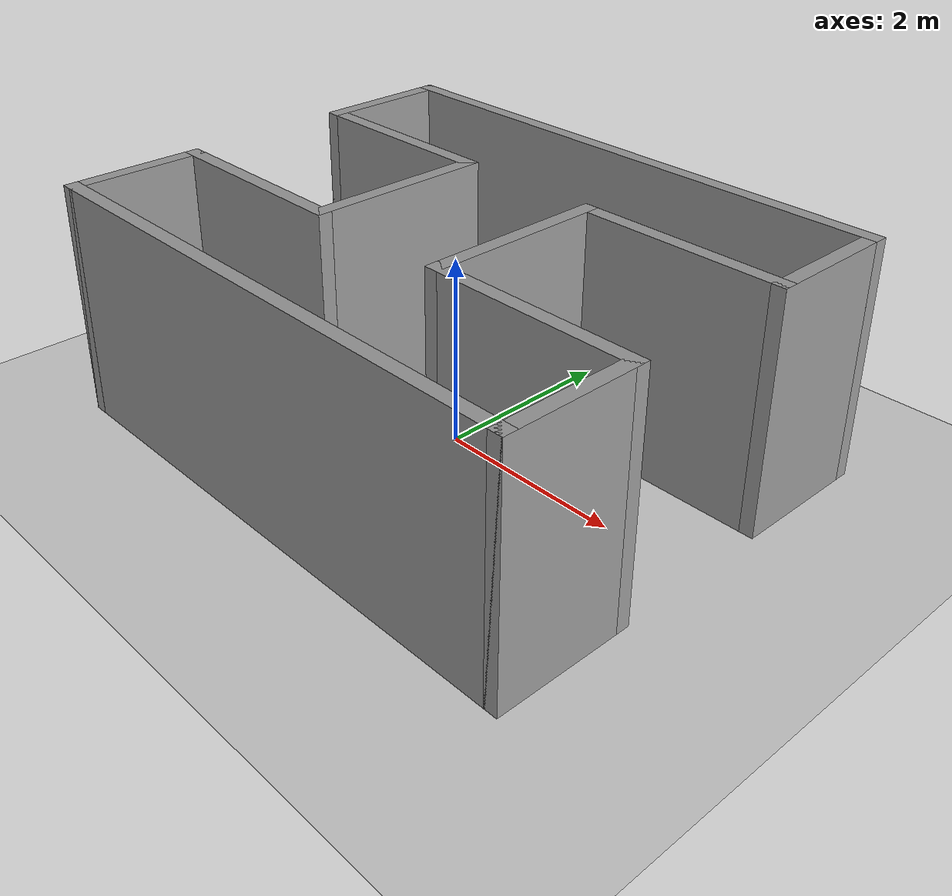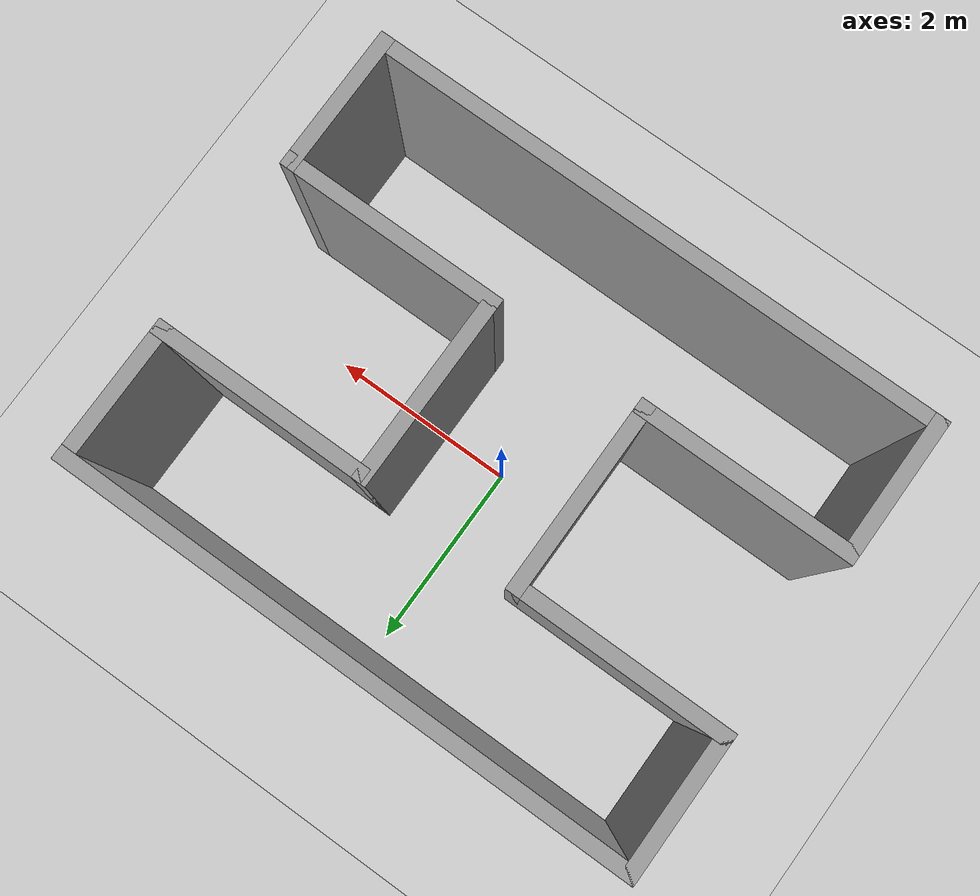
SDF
<sdf version="1.6">
 <world name="default">
  <light name="sun" type="directional">
   <pose>0 0 10 0 -0 0</pose>
   <diffuse>0.8 0.8 0.8 1</diffuse>
   <specular>0.2 0.2 0.2 1</specular>
   <attenuation>
    <range>1000</range>
    <constant>0.9</constant>
    <linear>0.01</linear>
    <quadratic>0.001</quadratic>
   </attenuation>
   <direction>-0.5 0.1 -0.9</direction>
  </light>
  <model name="ground_plane">
   <static>1</static>
   <link name="link">
    <collision name="collision">
     <geometry><plane><normal>0 0 1</normal><size>100 100</size></plane></geometry>
     <surface>
      <contact><collide_bitmask>65535</collide_bitmask></contact>
      <friction><ode><mu>100</mu><mu2>50</mu2></ode></friction>
     </surface>
    </collision>
    <visual name="visual">
     <cast_shadows>0</cast_shadows>
     <geometry><plane><normal>0 0 1</normal><size>100 100</size></plane></geometry>
     <material>
      <script><uri>file://media/materials/scripts/gazebo.material</uri><name>Gazebo/Grey</name></script>
     </material>
    </visual>
   </link>
  </model>
  <gravity>0 0 -9.8</gravity>
  <magnetic_field>6e-06 2.3e-05 -4.2e-05</magnetic_field>
  <atmosphere type="adiabatic"/>
  <physics name="default_physics" default="0" type="ode">
   <max_step_size>0.001</max_step_size>
   <real_time_factor>1</real_time_factor>
   <real_time_update_rate>1000</real_time_update_rate>
  </physics>
  <scene><ambient>0.4 0.4 0.4 1</ambient><background>0.7 0.7 0.7 1</background><shadows>1</shadows></scene>
  <spherical_coordinates>
   <surface_model>EARTH_WGS84</surface_model>
   <latitude_deg>0</latitude_deg>
   <longitude_deg>0</longitude_deg>
   <elevation>0</elevation>
   <heading_deg>0</heading_deg>
  </spherical_coordinates>
  <model name="train_ma_06_0">
   <link name="Wall_27">
    <collision name="Wall_27_Collision">
     <geometry><box><size>6 0.15 2.5</size></box></geometry>
     <pose>0 0 1.25 0 -0 0</pose>
    </collision>
    <visual name="Wall_27_Visual">
     <pose>0 0 1.25 0 -0 0</pose>
     <geometry><box><size>6 0.15 2.5</size></box></geometry>
     <material>
      <script><uri>file://media/materials/scripts/gazebo.material</uri><name>Gazebo/Grey</name></script>
      <ambient>1 1 1 1</ambient>
     </material>
     <meta><layer>0</layer></meta>
    </visual>
    <pose>0 2.275 0 0 -0 3.14159</pose>
   </link>
   <link name="Wall_28">
    <collision name="Wall_28_Collision">
     <geometry><box><size>1.5 0.15 2.5</size></box></geometry>
     <pose>0 0 1.25 0 -0 0</pose>
    </collision>
    <visual name="Wall_28_Visual">
     <pose>0 0 1.25 0 -0 0</pose>
     <geometry><box><size>1.5 0.15 2.5</size></box></geometry>
     <material>
      <script><uri>file://media/materials/scripts/gazebo.material</uri><name>Gazebo/Grey</name></script>
      <ambient>1 1 1 1</ambient>
     </material>
     <meta><layer>0</layer></meta>
    </visual>
    <pose>-2.925 1.6 0 0 0 -1.5708</pose>
   </link>
   <link name="Wall_36">
    <collision name="Wall_36_Collision">
     <geometry><box><size>1.5 0.15 2.5</size></box></geometry>
     <pose>0 0 1.25 0 -0 0</pose>
    </collision>
    <visual name="Wall_36_Visual">
     <pose>0 0 1.25 0 -0 0</pose>
     <geometry><box><size>1.5 0.15 2.5</size></box></geometry>
     <material>
      <script><uri>file://media/materials/scripts/gazebo.material</uri><name>Gazebo/Grey</name></script>
      <ambient>1 1 1 1</ambient>
     </material>
     <meta><layer>0</layer></meta>
    </visual>
    <pose>2.925 1.6 0 0 -0 1.5708</pose>
   </link>
   <link name="Wall_38">
    <collision name="Wall_38_Collision">
     <geometry><box><size>2.25 0.15 2.5</size></box></geometry>
     <pose>0 0 1.25 0 -0 0</pose>
    </collision>
    <visual name="Wall_38_Visual">
     <pose>0 0 1.25 0 -0 0</pose>
     <geometry><box><size>2.25 0.15 2.5</size></box></geometry>
     <material>
      <script><uri>file://media/materials/scripts/gazebo.material</uri><name>Gazebo/Grey</name></script>
      <ambient>1 1 1 1</ambient>
     </material>
     <meta><layer>0</layer></meta>
    </visual>
    <pose>-1.875 0.925 0 0 -0 0</pose>
   </link>
   <link name="Wall_40">
    <collision name="Wall_40_Collision">
     <geometry><box><size>2.25 0.15 2.5</size></box></geometry>
     <pose>0 0 1.25 0 -0 0</pose>
    </collision>
    <visual name="Wall_40_Visual">
     <pose>0 0 1.25 0 -0 0</pose>
     <geometry><box><size>2.25 0.15 2.5</size></box></geometry>
     <material>
      <script><uri>file://media/materials/scripts/gazebo.material</uri><name>Gazebo/Grey</name></script>
      <ambient>1 1 1 1</ambient>
     </material>
     <meta><layer>0</layer></meta>
    </visual>
    <pose>1.875 0.925 0 0 -0 0</pose>
   </link>
   <link name="Wall_42">
    <collision name="Wall_42_Collision">
     <geometry><box><size>2 0.15 2.5</size></box></geometry>
     <pose>0 0 1.25 0 -0 0</pose>
    </collision>
    <visual name="Wall_42_Visual">
     <pose>0 0 1.25 0 -0 0</pose>
     <geometry><box><size>2 0.15 2.5</size></box></geometry>
     <material>
      <script><uri>file://media/materials/scripts/gazebo.material</uri><name>Gazebo/Grey</name></script>
      <ambient>1 1 1 1</ambient>
     </material>
     <meta><layer>0</layer></meta>
    </visual>
    <pose>-0.825 0 0 0 0 -1.5708</pose>
   </link>
   <link name="Wall_44">
    <collision name="Wall_44_Collision">
     <geometry><box><size>2 0.15 2.5</size></box></geometry>
     <pose>0 0 1.25 0 -0 0</pose>
    </collision>
    <visual name="Wall_44_Visual">
     <pose>0 0 1.25 0 -0 0</pose>
     <geometry><box><size>2 0.15 2.5</size></box></geometry>
     <material>
      <script><uri>file://media/materials/scripts/gazebo.material</uri><name>Gazebo/Grey</name></script>
      <ambient>1 1 1 1</ambient>
     </material>
     <meta><layer>0</layer></meta>
    </visual>
    <pose>0.775 0 0 0 -0 1.5708</pose>
   </link>
   <link name="Wall_46">
    <collision name="Wall_46_Collision">
     <geometry><box><size>2.25 0.15 2.5</size></box></geometry>
     <pose>0 0 1.25 0 -0 0</pose>
    </collision>
    <visual name="Wall_46_Visual">
     <pose>0 0 1.25 0 -0 0</pose>
     <geometry><box><size>2.25 0.15 2.5</size></box></geometry>
     <material>
      <script><uri>file://media/materials/scripts/gazebo.material</uri><name>Gazebo/Grey</name></script>
      <ambient>1 1 1 1</ambient>
     </material>
     <meta><layer>0</layer></meta>
    </visual>
    <pose>-1.875 -0.925 0 0 -0 3.14159</pose>
   </link>
   <link name="Wall_47">
    <collision name="Wall_47_Collision">
     <geometry><box><size>1.5 0.15 2.5</size></box></geometry>
     <pose>0 0 1.25 0 -0 0</pose>
    </collision>
    <visual name="Wall_47_Visual">
     <pose>0 0 1.25 0 -0 0</pose>
     <geometry><box><size>1.5 0.15 2.5</size></box></geometry>
     <material>
      <script><uri>file://media/materials/scripts/gazebo.material</uri><name>Gazebo/Grey</name></script>
      <ambient>1 1 1 1</ambient>
     </material>
     <meta><layer>0</layer></meta>
    </visual>
    <pose>-2.925 -1.6 0 0 0 -1.5708</pose>
   </link>
   <link name="Wall_48">
    <collision name="Wall_48_Collision">
     <geometry><box><size>6 0.15 2.5</size></box></geometry>
     <pose>0 0 1.25 0 -0 0</pose>
    </collision>
    <visual name="Wall_48_Visual">
     <pose>0 0 1.25 0 -0 0</pose>
     <geometry><box><size>6 0.15 2.5</size></box></geometry>
     <material>
      <script><uri>file://media/materials/scripts/gazebo.material</uri><name>Gazebo/Grey</name></script>
      <ambient>1 1 1 1</ambient>
     </material>
     <meta><layer>0</layer></meta>
    </visual>
    <pose>0 -2.275 0 0 -0 0</pose>
   </link>
   <link name="Wall_49">
    <collision name="Wall_49_Collision">
     <geometry><box><size>1.5 0.15 2.5</size></box></geometry>
     <pose>0 0 1.25 0 -0 0</pose>
    </collision>
    <visual name="Wall_49_Visual">
     <pose>0 0 1.25 0 -0 0</pose>
     <geometry><box><size>1.5 0.15 2.5</size></box></geometry>
     <material>
      <script><uri>file://media/materials/scripts/gazebo.material</uri><name>Gazebo/Grey</name></script>
      <ambient>1 1 1 1</ambient>
     </material>
     <meta><layer>0</layer></meta>
    </visual>
    <pose>2.925 -1.6 0 0 -0 1.5708</pose>
   </link>
   <link name="Wall_50">
    <collision name="Wall_50_Collision">
     <geometry><box><size>2.3 0.15 2.5</size></box></geometry>
     <pose>0 0 1.25 0 -0 0</pose>
    </collision>
    <visual name="Wall_50_Visual">
     <pose>0 0 1.25 0 -0 0</pose>
     <geometry><box><size>2.3 0.15 2.5</size></box></geometry>
     <material>
      <script><uri>file://media/materials/scripts/gazebo.material</uri><name>Gazebo/Grey</name></script>
      <ambient>1 1 1 1</ambient>
     </material>
     <meta><layer>0</layer></meta>
    </visual>
    <pose>1.85 -0.925 0 0 -0 3.14159</pose>
   </link>
   <static>1</static>
  </model>
 </world>
</sdf>
